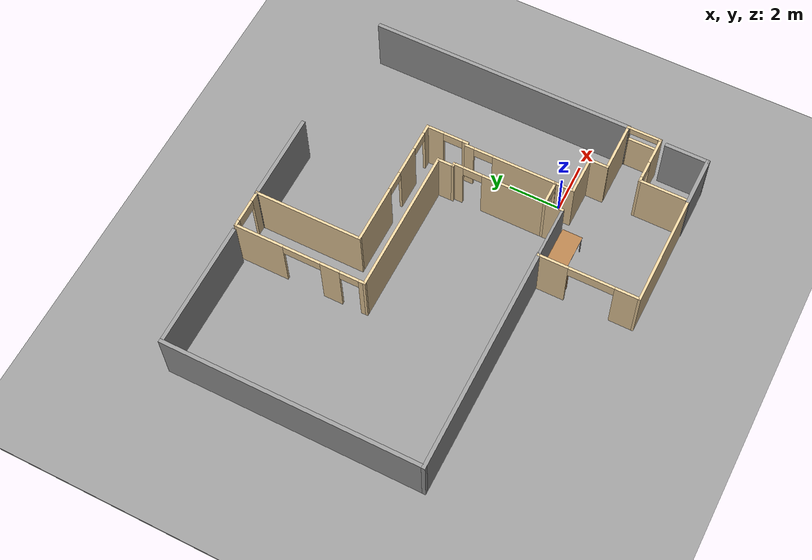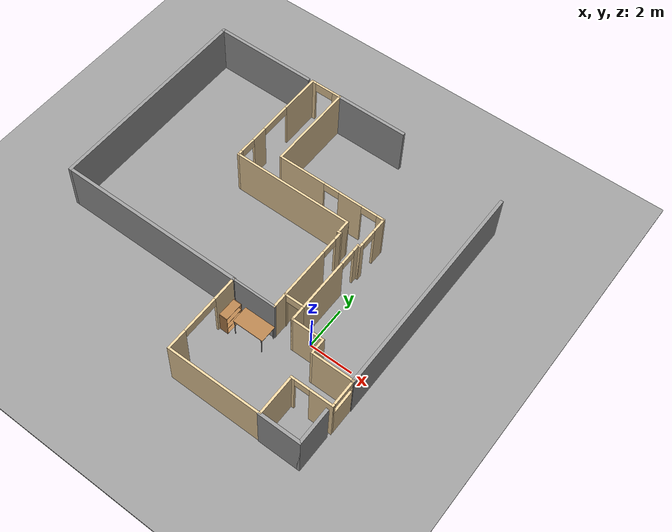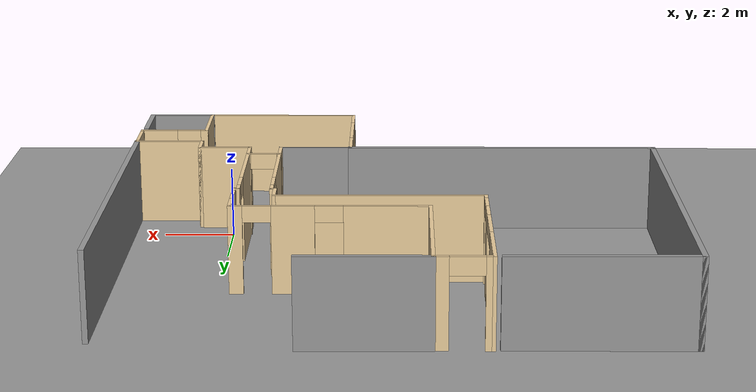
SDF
<sdf version="1.6">
 <world name="default">
  <model name="ground_plane">
   <static>1</static>
   <link name="link">
    <collision name="collision">
     <geometry><plane><normal>0 0 1</normal><size>100 100</size></plane></geometry>
     <surface><friction><ode><mu>100</mu><mu2>50</mu2></ode></friction></surface>
    </collision>
    <visual name="visual">
     <cast_shadows>0</cast_shadows>
     <geometry><plane><normal>0 0 1</normal><size>100 100</size></plane></geometry>
     <material>
      <script><uri>file://media/materials/scripts/gazebo.material</uri><name>Gazebo/Grey</name></script>
     </material>
    </visual>
   </link>
  </model>
  <model name="myroom">
   <pose>-4.68363 2.51363 0 0 -0 0</pose>
   <link name="Wall_19">
    <collision name="Wall_19_Collision">
     <geometry><box><size>0.81 0.1 2.5</size></box></geometry>
     <pose>0 0 1.25 0 -0 0</pose>
    </collision>
    <visual name="Wall_19_Visual">
     <pose>0 0 1.25 0 -0 0</pose>
     <geometry><box><size>0.81 0.1 2.5</size></box></geometry>
     <material>
      <script><uri>file://media/materials/scripts/gazebo.material</uri><name>Gazebo/Grey</name></script>
      <ambient>0.921569 0.807843 0.615686 1</ambient>
     </material>
     <meta><layer>0</layer></meta>
    </visual>
    <pose>4.2 -2.785 0 0 0 -1.5708</pose>
   </link>
   <link name="Wall_22">
    <collision name="Wall_22_Collision">
     <geometry><box><size>1.57 0.1 2.5</size></box></geometry>
     <pose>0 0 1.25 0 -0 0</pose>
    </collision>
    <visual name="Wall_22_Visual">
     <pose>0 0 1.25 0 -0 0</pose>
     <geometry><box><size>1.57 0.1 2.5</size></box></geometry>
     <material>
      <script><uri>file://media/materials/scripts/gazebo.material</uri><name>Gazebo/Grey</name></script>
      <ambient>0.921569 0.807843 0.615686 1</ambient>
     </material>
     <meta><layer>0</layer></meta>
    </visual>
    <pose>4.935 -3.14 0 0 -0 0</pose>
   </link>
   <link name="Wall_24">
    <collision name="Wall_24_Collision">
     <geometry><box><size>0.79 0.1 2.5</size></box></geometry>
     <pose>0 0 1.25 0 -0 0</pose>
    </collision>
    <visual name="Wall_24_Visual">
     <pose>0 0 1.25 0 -0 0</pose>
     <geometry><box><size>0.79 0.1 2.5</size></box></geometry>
     <material>
      <script><uri>file://media/materials/scripts/gazebo.material</uri><name>Gazebo/Grey</name></script>
      <ambient>0.921569 0.807843 0.615686 1</ambient>
     </material>
     <meta><layer>0</layer></meta>
    </visual>
    <pose>5.67 -3.485 0 0 0 -1.5708</pose>
   </link>
   <link name="Wall_26">
    <collision name="Wall_26_Collision">
     <geometry><box><size>2.03 0.1 2.5</size></box></geometry>
     <pose>0 0 1.25 0 -0 0</pose>
    </collision>
    <visual name="Wall_26_Visual">
     <pose>0 0 1.25 0 -0 0</pose>
     <geometry><box><size>2.03 0.1 2.5</size></box></geometry>
     <material>
      <script><uri>file://media/materials/scripts/gazebo.material</uri><name>Gazebo/Grey</name></script>
      <ambient>0.921569 0.807843 0.615686 1</ambient>
     </material>
     <meta><layer>0</layer></meta>
    </visual>
    <pose>6.635 -3.83 0 0 -0 0</pose>
   </link>
   <link name="Wall_28">
    <pose>7.6 -4.475 0 0 0 -1.5708</pose>
    <visual name="Wall_28_Visual_0">
     <pose>-0.621782 0 1.25 0 -0 0</pose>
     <geometry><box><size>0.146436 0.1 2.5</size></box></geometry>
     <material>
      <script><uri>file://media/materials/scripts/gazebo.material</uri><name>Gazebo/Grey</name></script>
      <ambient>0.921569 0.807843 0.615686 1</ambient>
     </material>
     <meta><layer>0</layer></meta>
    </visual>
    <collision name="Wall_28_Collision_0">
     <geometry><box><size>0.146436 0.1 2.5</size></box></geometry>
     <pose>-0.621782 0 1.25 0 -0 0</pose>
    </collision>
    <visual name="Wall_28_Visual_1">
     <pose>0.073218 0 0.9 0 -0 0</pose>
     <geometry><box><size>1.24356 0.1 1.8</size></box></geometry>
     <material>
      <script><uri>file://media/materials/scripts/gazebo.material</uri><name>Gazebo/Grey</name></script>
      <ambient>0.921569 0.807843 0.615686 1</ambient>
     </material>
     <meta><layer>0</layer></meta>
    </visual>
    <collision name="Wall_28_Collision_1">
     <geometry><box><size>1.24356 0.1 1.8</size></box></geometry>
     <pose>0.073218 0 0.9 0 -0 0</pose>
    </collision>
    <visual name="Wall_28_Visual_2">
     <pose>0.623218 0 2.15 0 -0 0</pose>
     <geometry><box><size>0.143564 0.1 0.7</size></box></geometry>
     <material>
      <script><uri>file://media/materials/scripts/gazebo.material</uri><name>Gazebo/Grey</name></script>
      <ambient>0.921569 0.807843 0.615686 1</ambient>
     </material>
     <meta><layer>0</layer></meta>
    </visual>
    <collision name="Wall_28_Collision_2">
     <geometry><box><size>0.143564 0.1 0.7</size></box></geometry>
     <pose>0.623218 0 2.15 0 -0 0</pose>
    </collision>
    <visual name="Wall_28_Visual_3">
     <pose>0.001436 0 2.35 0 -0 0</pose>
     <geometry><box><size>1.1 0.1 0.3</size></box></geometry>
     <material>
      <script><uri>file://media/materials/scripts/gazebo.material</uri><name>Gazebo/Grey</name></script>
      <ambient>0.921569 0.807843 0.615686 1</ambient>
     </material>
     <meta><layer>0</layer></meta>
    </visual>
    <collision name="Wall_28_Collision_3">
     <geometry><box><size>1.1 0.1 0.3</size></box></geometry>
     <pose>0.001436 0 2.35 0 -0 0</pose>
    </collision>
   </link>
   <link name="Wall_30">
    <pose>6.635 -5.12 0 0 -0 3.14159</pose>
    <visual name="Wall_30_Visual_0">
     <pose>-0.459913 0 1.25 0 -0 0</pose>
     <geometry><box><size>1.11017 0.1 2.5</size></box></geometry>
     <material>
      <script><uri>file://media/materials/scripts/gazebo.material</uri><name>Gazebo/Grey</name></script>
      <ambient>0.921569 0.807843 0.615686 1</ambient>
     </material>
     <meta><layer>0</layer></meta>
    </visual>
    <collision name="Wall_30_Collision_0">
     <geometry><box><size>1.11017 0.1 2.5</size></box></geometry>
     <pose>-0.459913 0 1.25 0 -0 0</pose>
    </collision>
    <visual name="Wall_30_Visual_1">
     <pose>0.905087 0 1.25 0 -0 0</pose>
     <geometry><box><size>0.219825 0.1 2.5</size></box></geometry>
     <material>
      <script><uri>file://media/materials/scripts/gazebo.material</uri><name>Gazebo/Grey</name></script>
      <ambient>0.921569 0.807843 0.615686 1</ambient>
     </material>
     <meta><layer>0</layer></meta>
    </visual>
    <collision name="Wall_30_Collision_1">
     <geometry><box><size>0.219825 0.1 2.5</size></box></geometry>
     <pose>0.905087 0 1.25 0 -0 0</pose>
    </collision>
    <visual name="Wall_30_Visual_2">
     <pose>0.445175 0 2.275 0 -0 0</pose>
     <geometry><box><size>0.7 0.1 0.45</size></box></geometry>
     <material>
      <script><uri>file://media/materials/scripts/gazebo.material</uri><name>Gazebo/Grey</name></script>
      <ambient>0.921569 0.807843 0.615686 1</ambient>
     </material>
     <meta><layer>0</layer></meta>
    </visual>
    <collision name="Wall_30_Collision_2">
     <geometry><box><size>0.7 0.1 0.45</size></box></geometry>
     <pose>0.445175 0 2.275 0 -0 0</pose>
    </collision>
   </link>
   <link name="Wall_32">
    <collision name="Wall_32_Collision">
     <geometry><box><size>1.99 0.1 2.5</size></box></geometry>
     <pose>0 0 1.25 0 -0 0</pose>
    </collision>
    <visual name="Wall_32_Visual">
     <pose>0 0 1.25 0 -0 0</pose>
     <geometry><box><size>1.99 0.1 2.5</size></box></geometry>
     <material>
      <script><uri>file://media/materials/scripts/gazebo.material</uri><name>Gazebo/Grey</name></script>
      <ambient>0.921569 0.807843 0.615686 1</ambient>
     </material>
     <meta><layer>0</layer></meta>
    </visual>
    <pose>5.67 -6.065 0 0 0 -1.5708</pose>
   </link>
   <link name="Wall_34">
    <collision name="Wall_34_Collision">
     <geometry><box><size>4.52 0.1 2.5</size></box></geometry>
     <pose>0 0 1.25 0 -0 0</pose>
    </collision>
    <visual name="Wall_34_Visual">
     <pose>0 0 1.25 0 -0 0</pose>
     <geometry><box><size>4.52 0.1 2.5</size></box></geometry>
     <material>
      <script><uri>file://media/materials/scripts/gazebo.material</uri><name>Gazebo/Grey</name></script>
      <ambient>0.921569 0.807843 0.615686 1</ambient>
     </material>
     <meta><layer>0</layer></meta>
    </visual>
    <pose>3.46 -7.01 0 0 -0 3.14159</pose>
   </link>
   <link name="Wall_36">
    <pose>1.25 -5.0735 0 0 -0 1.5708</pose>
    <visual name="Wall_36_Visual_0">
     <pose>-1.4907 0 1.25 0 -0 0</pose>
     <geometry><box><size>0.991176 0.1 2.5</size></box></geometry>
     <material>
      <script><uri>file://media/materials/scripts/gazebo.material</uri><name>Gazebo/Grey</name></script>
      <ambient>0.921569 0.807843 0.615686 1</ambient>
     </material>
     <meta><layer>0</layer></meta>
    </visual>
    <collision name="Wall_36_Collision_0">
     <geometry><box><size>0.991176 0.1 2.5</size></box></geometry>
     <pose>-1.4907 0 1.25 0 -0 0</pose>
    </collision>
    <visual name="Wall_36_Visual_1">
     <pose>0.495588 0 0.005 0 -0 0</pose>
     <geometry><box><size>2.9814 0.1 0.01</size></box></geometry>
     <material>
      <script><uri>file://media/materials/scripts/gazebo.material</uri><name>Gazebo/Grey</name></script>
      <ambient>0.921569 0.807843 0.615686 1</ambient>
     </material>
     <meta><layer>0</layer></meta>
    </visual>
    <collision name="Wall_36_Collision_1">
     <geometry><box><size>2.9814 0.1 0.01</size></box></geometry>
     <pose>0.495588 0 0.005 0 -0 0</pose>
    </collision>
    <visual name="Wall_36_Visual_2">
     <pose>1.38559 0 1.255 0 -0 0</pose>
     <geometry><box><size>1.2014 0.1 2.49</size></box></geometry>
     <material>
      <script><uri>file://media/materials/scripts/gazebo.material</uri><name>Gazebo/Grey</name></script>
      <ambient>0.921569 0.807843 0.615686 1</ambient>
     </material>
     <meta><layer>0</layer></meta>
    </visual>
    <collision name="Wall_36_Collision_2">
     <geometry><box><size>1.2014 0.1 2.49</size></box></geometry>
     <pose>1.38559 0 1.255 0 -0 0</pose>
    </collision>
    <visual name="Wall_36_Visual_3">
     <pose>-0.105111 0 2.255 0 -0 0</pose>
     <geometry><box><size>1.78 0.1 0.49</size></box></geometry>
     <material>
      <script><uri>file://media/materials/scripts/gazebo.material</uri><name>Gazebo/Grey</name></script>
      <ambient>0.921569 0.807843 0.615686 1</ambient>
     </material>
     <meta><layer>0</layer></meta>
    </visual>
    <collision name="Wall_36_Collision_3">
     <geometry><box><size>1.78 0.1 0.49</size></box></geometry>
     <pose>-0.105111 0 2.255 0 -0 0</pose>
    </collision>
   </link>
   <link name="Wall_38">
    <pose>3.745 -2.43 0 0 -0 3.14159</pose>
    <visual name="Wall_38_Visual_0">
     <pose>-0.442506 0 1.25 0 -0 0</pose>
     <geometry><box><size>0.124989 0.1 2.5</size></box></geometry>
     <material>
      <script><uri>file://media/materials/scripts/gazebo.material</uri><name>Gazebo/Grey</name></script>
      <ambient>0.921569 0.807843 0.615686 1</ambient>
     </material>
     <meta><layer>0</layer></meta>
    </visual>
    <collision name="Wall_38_Collision_0">
     <geometry><box><size>0.124989 0.1 2.5</size></box></geometry>
     <pose>-0.442506 0 1.25 0 -0 0</pose>
    </collision>
    <visual name="Wall_38_Visual_1">
     <pose>0.442494 0 1.25 0 -0 0</pose>
     <geometry><box><size>0.125011 0.1 2.5</size></box></geometry>
     <material>
      <script><uri>file://media/materials/scripts/gazebo.material</uri><name>Gazebo/Grey</name></script>
      <ambient>0.921569 0.807843 0.615686 1</ambient>
     </material>
     <meta><layer>0</layer></meta>
    </visual>
    <collision name="Wall_38_Collision_1">
     <geometry><box><size>0.125011 0.1 2.5</size></box></geometry>
     <pose>0.442494 0 1.25 0 -0 0</pose>
    </collision>
    <visual name="Wall_38_Visual_2">
     <pose>-1.1e-05 0 2.275 0 -0 0</pose>
     <geometry><box><size>0.76 0.1 0.45</size></box></geometry>
     <material>
      <script><uri>file://media/materials/scripts/gazebo.material</uri><name>Gazebo/Grey</name></script>
      <ambient>0.921569 0.807843 0.615686 1</ambient>
     </material>
     <meta><layer>0</layer></meta>
    </visual>
    <collision name="Wall_38_Collision_2">
     <geometry><box><size>0.76 0.1 0.45</size></box></geometry>
     <pose>-1.1e-05 0 2.275 0 -0 0</pose>
    </collision>
   </link>
   <link name="Wall_43">
    <collision name="Wall_43_Collision">
     <geometry><box><size>0.8 0.1 2.5</size></box></geometry>
     <pose>0 0 1.25 0 -0 0</pose>
    </collision>
    <visual name="Wall_43_Visual">
     <pose>0 0 1.25 0 -0 0</pose>
     <geometry><box><size>0.8 0.1 2.5</size></box></geometry>
     <material>
      <script><uri>file://media/materials/scripts/gazebo.material</uri><name>Gazebo/Grey</name></script>
      <ambient>0.921569 0.807843 0.615686 1</ambient>
     </material>
     <meta><layer>0</layer></meta>
    </visual>
    <pose>3.29 -2.78 0 0 0 -1.5708</pose>
   </link>
   <link name="Wall_48">
    <collision name="Wall_48_Collision">
     <geometry><box><size>2.14 0.1 2.5</size></box></geometry>
     <pose>0 0 1.25 0 -0 0</pose>
    </collision>
    <visual name="Wall_48_Visual">
     <pose>0 0 1.25 0 -0 0</pose>
     <geometry><box><size>2.14 0.1 2.5</size></box></geometry>
     <material>
      <script><uri>file://media/materials/scripts/gazebo.material</uri><name>Gazebo/Grey</name></script>
      <ambient>1 1 1 1</ambient>
     </material>
     <meta><layer>0</layer></meta>
    </visual>
    <pose>2.27 -3.13 0 0 -0 3.14159</pose>
   </link>
   <link name="Wall_50">
    <pose>3.29 -0.61 0 0 -0 1.5708</pose>
    <visual name="Wall_50_Visual_0">
     <pose>-0.593478 0 1.25 0 -0 0</pose>
     <geometry><box><size>2.55304 0.1 2.5</size></box></geometry>
     <material>
      <script><uri>file://media/materials/scripts/gazebo.material</uri><name>Gazebo/Grey</name></script>
      <ambient>0.921569 0.807843 0.615686 1</ambient>
     </material>
     <meta><layer>0</layer></meta>
    </visual>
    <collision name="Wall_50_Collision_0">
     <geometry><box><size>2.55304 0.1 2.5</size></box></geometry>
     <pose>-0.593478 0 1.25 0 -0 0</pose>
    </collision>
    <visual name="Wall_50_Visual_1">
     <pose>1.65652 0 1.25 0 -0 0</pose>
     <geometry><box><size>0.426956 0.1 2.5</size></box></geometry>
     <material>
      <script><uri>file://media/materials/scripts/gazebo.material</uri><name>Gazebo/Grey</name></script>
      <ambient>0.921569 0.807843 0.615686 1</ambient>
     </material>
     <meta><layer>0</layer></meta>
    </visual>
    <collision name="Wall_50_Collision_1">
     <geometry><box><size>0.426956 0.1 2.5</size></box></geometry>
     <pose>1.65652 0 1.25 0 -0 0</pose>
    </collision>
    <visual name="Wall_50_Visual_2">
     <pose>1.06304 0 2.275 0 -0 0</pose>
     <geometry><box><size>0.76 0.1 0.45</size></box></geometry>
     <material>
      <script><uri>file://media/materials/scripts/gazebo.material</uri><name>Gazebo/Grey</name></script>
      <ambient>0.921569 0.807843 0.615686 1</ambient>
     </material>
     <meta><layer>0</layer></meta>
    </visual>
    <collision name="Wall_50_Collision_2">
     <geometry><box><size>0.76 0.1 0.45</size></box></geometry>
     <pose>1.06304 0 2.275 0 -0 0</pose>
    </collision>
   </link>
   <link name="Wall_52">
    <collision name="Wall_52_Collision">
     <geometry><box><size>0.2 0.1 2.5</size></box></geometry>
     <pose>0 0 1.25 0 -0 0</pose>
    </collision>
    <visual name="Wall_52_Visual">
     <pose>0 0 1.25 0 -0 0</pose>
     <geometry><box><size>0.2 0.1 2.5</size></box></geometry>
     <material>
      <script><uri>file://media/materials/scripts/gazebo.material</uri><name>Gazebo/Grey</name></script>
      <ambient>0.921569 0.807843 0.615686 1</ambient>
     </material>
     <meta><layer>0</layer></meta>
    </visual>
    <pose>3.24 1.21 0 0 -0 3.14159</pose>
   </link>
   <link name="Wall_53">
    <collision name="Wall_53_Collision">
     <geometry><box><size>0.7 0.1 2.5</size></box></geometry>
     <pose>0 0 1.25 0 -0 0</pose>
    </collision>
    <visual name="Wall_53_Visual">
     <pose>0 0 1.25 0 -0 0</pose>
     <geometry><box><size>0.7 0.1 2.5</size></box></geometry>
     <material>
      <script><uri>file://media/materials/scripts/gazebo.material</uri><name>Gazebo/Grey</name></script>
      <ambient>0.921569 0.807843 0.615686 1</ambient>
     </material>
     <meta><layer>0</layer></meta>
    </visual>
    <pose>3.19 1.51 0 0 -0 1.5708</pose>
   </link>
   <link name="Wall_54">
    <collision name="Wall_54_Collision">
     <geometry><box><size>5.8 0.1 2.5</size></box></geometry>
     <pose>0 0 1.25 0 -0 0</pose>
    </collision>
    <visual name="Wall_54_Visual">
     <pose>0 0 1.25 0 -0 0</pose>
     <geometry><box><size>5.8 0.1 2.5</size></box></geometry>
     <material>
      <script><uri>file://media/materials/scripts/gazebo.material</uri><name>Gazebo/Grey</name></script>
      <ambient>0.921569 0.807843 0.615686 1</ambient>
     </material>
     <meta><layer>0</layer></meta>
    </visual>
    <pose>0.34 1.81 0 0 -0 3.14159</pose>
   </link>
   <link name="Wall_56">
    <pose>4.2 -0.63 0 0 -0 1.5708</pose>
    <visual name="Wall_56_Visual_0">
     <pose>-0.569733 0 1.25 0 -0 0</pose>
     <geometry><box><size>2.56053 0.1 2.5</size></box></geometry>
     <material>
      <script><uri>file://media/materials/scripts/gazebo.material</uri><name>Gazebo/Grey</name></script>
      <ambient>0.921569 0.807843 0.615686 1</ambient>
     </material>
     <meta><layer>0</layer></meta>
    </visual>
    <collision name="Wall_56_Collision_0">
     <geometry><box><size>2.56053 0.1 2.5</size></box></geometry>
     <pose>-0.569733 0 1.25 0 -0 0</pose>
    </collision>
    <visual name="Wall_56_Visual_1">
     <pose>1.66027 0 1.25 0 -0 0</pose>
     <geometry><box><size>0.379466 0.1 2.5</size></box></geometry>
     <material>
      <script><uri>file://media/materials/scripts/gazebo.material</uri><name>Gazebo/Grey</name></script>
      <ambient>0.921569 0.807843 0.615686 1</ambient>
     </material>
     <meta><layer>0</layer></meta>
    </visual>
    <collision name="Wall_56_Collision_1">
     <geometry><box><size>0.379466 0.1 2.5</size></box></geometry>
     <pose>1.66027 0 1.25 0 -0 0</pose>
    </collision>
    <visual name="Wall_56_Visual_2">
     <pose>1.09053 0 2.275 0 -0 0</pose>
     <geometry><box><size>0.76 0.1 0.45</size></box></geometry>
     <material>
      <script><uri>file://media/materials/scripts/gazebo.material</uri><name>Gazebo/Grey</name></script>
      <ambient>0.921569 0.807843 0.615686 1</ambient>
     </material>
     <meta><layer>0</layer></meta>
    </visual>
    <collision name="Wall_56_Collision_2">
     <geometry><box><size>0.76 0.1 0.45</size></box></geometry>
     <pose>1.09053 0 2.275 0 -0 0</pose>
    </collision>
   </link>
   <link name="Wall_57">
    <collision name="Wall_57_Collision">
     <geometry><box><size>0.2 0.1 2.5</size></box></geometry>
     <pose>0 0 1.25 0 -0 0</pose>
    </collision>
    <visual name="Wall_57_Visual">
     <pose>0 0 1.25 0 -0 0</pose>
     <geometry><box><size>0.2 0.1 2.5</size></box></geometry>
     <material>
      <script><uri>file://media/materials/scripts/gazebo.material</uri><name>Gazebo/Grey</name></script>
      <ambient>0.921569 0.807843 0.615686 1</ambient>
     </material>
     <meta><layer>0</layer></meta>
    </visual>
    <pose>4.25 1.17 0 0 -0 0</pose>
   </link>
   <link name="Wall_58">
    <pose>4.3 1.97 0 0 -0 1.5708</pose>
    <visual name="Wall_58_Visual_0">
     <pose>-0.725824 0 1.25 0 -0 0</pose>
     <geometry><box><size>0.248351 0.1 2.5</size></box></geometry>
     <material>
      <script><uri>file://media/materials/scripts/gazebo.material</uri><name>Gazebo/Grey</name></script>
      <ambient>0.921569 0.807843 0.615686 1</ambient>
     </material>
     <meta><layer>0</layer></meta>
    </visual>
    <collision name="Wall_58_Collision_0">
     <geometry><box><size>0.248351 0.1 2.5</size></box></geometry>
     <pose>-0.725824 0 1.25 0 -0 0</pose>
    </collision>
    <visual name="Wall_58_Visual_1">
     <pose>0.504176 0 1.25 0 -0 0</pose>
     <geometry><box><size>0.691649 0.1 2.5</size></box></geometry>
     <material>
      <script><uri>file://media/materials/scripts/gazebo.material</uri><name>Gazebo/Grey</name></script>
      <ambient>0.921569 0.807843 0.615686 1</ambient>
     </material>
     <meta><layer>0</layer></meta>
    </visual>
    <collision name="Wall_58_Collision_1">
     <geometry><box><size>0.691649 0.1 2.5</size></box></geometry>
     <pose>0.504176 0 1.25 0 -0 0</pose>
    </collision>
    <visual name="Wall_58_Visual_2">
     <pose>-0.221649 0 2.275 0 -0 0</pose>
     <geometry><box><size>0.76 0.1 0.45</size></box></geometry>
     <material>
      <script><uri>file://media/materials/scripts/gazebo.material</uri><name>Gazebo/Grey</name></script>
      <ambient>0.921569 0.807843 0.615686 1</ambient>
     </material>
     <meta><layer>0</layer></meta>
    </visual>
    <collision name="Wall_58_Collision_2">
     <geometry><box><size>0.76 0.1 0.45</size></box></geometry>
     <pose>-0.221649 0 2.275 0 -0 0</pose>
    </collision>
   </link>
   <link name="Wall_62">
    <pose>-2.51 4.41 0 0 -0 1.5708</pose>
    <visual name="Wall_62_Visual_0">
     <pose>-2.51076 0 1.25 0 -0 0</pose>
     <geometry><box><size>0.278473 0.1 2.5</size></box></geometry>
     <material>
      <script><uri>file://media/materials/scripts/gazebo.material</uri><name>Gazebo/Grey</name></script>
      <ambient>0.921569 0.807843 0.615686 1</ambient>
     </material>
     <meta><layer>0</layer></meta>
    </visual>
    <collision name="Wall_62_Collision_0">
     <geometry><box><size>0.278473 0.1 2.5</size></box></geometry>
     <pose>-2.51076 0 1.25 0 -0 0</pose>
    </collision>
    <visual name="Wall_62_Visual_1">
     <pose>-1.2242 0 1.25 0 -0 0</pose>
     <geometry><box><size>0.774661 0.1 2.5</size></box></geometry>
     <material>
      <script><uri>file://media/materials/scripts/gazebo.material</uri><name>Gazebo/Grey</name></script>
      <ambient>0.921569 0.807843 0.615686 1</ambient>
     </material>
     <meta><layer>0</layer></meta>
    </visual>
    <collision name="Wall_62_Collision_1">
     <geometry><box><size>0.774661 0.1 2.5</size></box></geometry>
     <pose>-1.2242 0 1.25 0 -0 0</pose>
    </collision>
    <visual name="Wall_62_Visual_2">
     <pose>1.65657 0 1.25 0 -0 0</pose>
     <geometry><box><size>1.98687 0.1 2.5</size></box></geometry>
     <material>
      <script><uri>file://media/materials/scripts/gazebo.material</uri><name>Gazebo/Grey</name></script>
      <ambient>0.921569 0.807843 0.615686 1</ambient>
     </material>
     <meta><layer>0</layer></meta>
    </visual>
    <collision name="Wall_62_Collision_2">
     <geometry><box><size>1.98687 0.1 2.5</size></box></geometry>
     <pose>1.65657 0 1.25 0 -0 0</pose>
    </collision>
    <visual name="Wall_62_Visual_3">
     <pose>-1.99153 0 2.275 0 -0 0</pose>
     <geometry><box><size>0.76 0.1 0.45</size></box></geometry>
     <material>
      <script><uri>file://media/materials/scripts/gazebo.material</uri><name>Gazebo/Grey</name></script>
      <ambient>0.921569 0.807843 0.615686 1</ambient>
     </material>
     <meta><layer>0</layer></meta>
    </visual>
    <collision name="Wall_62_Collision_3">
     <geometry><box><size>0.76 0.1 0.45</size></box></geometry>
     <pose>-1.99153 0 2.275 0 -0 0</pose>
    </collision>
    <visual name="Wall_62_Visual_4">
     <pose>-0.086866 0 2.275 0 -0 0</pose>
     <geometry><box><size>1.5 0.1 0.45</size></box></geometry>
     <material>
      <script><uri>file://media/materials/scripts/gazebo.material</uri><name>Gazebo/Grey</name></script>
      <ambient>0.921569 0.807843 0.615686 1</ambient>
     </material>
     <meta><layer>0</layer></meta>
    </visual>
    <collision name="Wall_62_Collision_4">
     <geometry><box><size>1.5 0.1 0.45</size></box></geometry>
     <pose>-0.086866 0 2.275 0 -0 0</pose>
    </collision>
   </link>
   <link name="Wall_64">
    <pose>-1.76 7.01 0 0 -0 0</pose>
    <visual name="Wall_64_Visual_0">
     <pose>-0.668872 0 1.25 0 -0 0</pose>
     <geometry><box><size>0.262256 0.1 2.5</size></box></geometry>
     <material>
      <script><uri>file://media/materials/scripts/gazebo.material</uri><name>Gazebo/Grey</name></script>
      <ambient>0.921569 0.807843 0.615686 1</ambient>
     </material>
     <meta><layer>0</layer></meta>
    </visual>
    <collision name="Wall_64_Collision_0">
     <geometry><box><size>0.262256 0.1 2.5</size></box></geometry>
     <pose>-0.668872 0 1.25 0 -0 0</pose>
    </collision>
    <visual name="Wall_64_Visual_1">
     <pose>0.581128 0 1.25 0 -0 0</pose>
     <geometry><box><size>0.437744 0.1 2.5</size></box></geometry>
     <material>
      <script><uri>file://media/materials/scripts/gazebo.material</uri><name>Gazebo/Grey</name></script>
      <ambient>0.921569 0.807843 0.615686 1</ambient>
     </material>
     <meta><layer>0</layer></meta>
    </visual>
    <collision name="Wall_64_Collision_1">
     <geometry><box><size>0.437744 0.1 2.5</size></box></geometry>
     <pose>0.581128 0 1.25 0 -0 0</pose>
    </collision>
    <visual name="Wall_64_Visual_2">
     <pose>-0.087744 0 2.25 0 -0 0</pose>
     <geometry><box><size>0.9 0.1 0.5</size></box></geometry>
     <material>
      <script><uri>file://media/materials/scripts/gazebo.material</uri><name>Gazebo/Grey</name></script>
      <ambient>0.921569 0.807843 0.615686 1</ambient>
     </material>
     <meta><layer>0</layer></meta>
    </visual>
    <collision name="Wall_64_Collision_2">
     <geometry><box><size>0.9 0.1 0.5</size></box></geometry>
     <pose>-0.087744 0 2.25 0 -0 0</pose>
    </collision>
   </link>
   <link name="Wall_66">
    <collision name="Wall_66_Collision">
     <geometry><box><size>4.30002 0.1 2.5</size></box></geometry>
     <pose>0 0 1.25 0 -0 0</pose>
    </collision>
    <visual name="Wall_66_Visual">
     <pose>0 0 1.25 0 -0 0</pose>
     <geometry><box><size>4.30002 0.1 2.5</size></box></geometry>
     <material>
      <script><uri>file://media/materials/scripts/gazebo.material</uri><name>Gazebo/Grey</name></script>
      <ambient>0.921569 0.807843 0.615686 1</ambient>
     </material>
     <meta><layer>0</layer></meta>
    </visual>
    <pose>-1.01 4.91 0 0 0 -1.5708</pose>
   </link>
   <link name="Wall_68">
    <pose>1.645 2.81 0 0 -0 0</pose>
    <visual name="Wall_68_Visual_0">
     <pose>-1.53066 0 1.25 0 -0 0</pose>
     <geometry><box><size>2.34868 0.1 2.5</size></box></geometry>
     <material>
      <script><uri>file://media/materials/scripts/gazebo.material</uri><name>Gazebo/Grey</name></script>
      <ambient>0.921569 0.807843 0.615686 1</ambient>
     </material>
     <meta><layer>0</layer></meta>
    </visual>
    <collision name="Wall_68_Collision_0">
     <geometry><box><size>2.34868 0.1 2.5</size></box></geometry>
     <pose>-1.53066 0 1.25 0 -0 0</pose>
    </collision>
    <visual name="Wall_68_Visual_1">
     <pose>0.980366 0 1.25 0 -0 0</pose>
     <geometry><box><size>1.15337 0.1 2.5</size></box></geometry>
     <material>
      <script><uri>file://media/materials/scripts/gazebo.material</uri><name>Gazebo/Grey</name></script>
      <ambient>0.921569 0.807843 0.615686 1</ambient>
     </material>
     <meta><layer>0</layer></meta>
    </visual>
    <collision name="Wall_68_Collision_1">
     <geometry><box><size>1.15337 0.1 2.5</size></box></geometry>
     <pose>0.980366 0 1.25 0 -0 0</pose>
    </collision>
    <visual name="Wall_68_Visual_2">
     <pose>2.51103 0 1.25 0 -0 0</pose>
     <geometry><box><size>0.387948 0.1 2.5</size></box></geometry>
     <material>
      <script><uri>file://media/materials/scripts/gazebo.material</uri><name>Gazebo/Grey</name></script>
      <ambient>0.921569 0.807843 0.615686 1</ambient>
     </material>
     <meta><layer>0</layer></meta>
    </visual>
    <collision name="Wall_68_Collision_2">
     <geometry><box><size>0.387948 0.1 2.5</size></box></geometry>
     <pose>2.51103 0 1.25 0 -0 0</pose>
    </collision>
    <visual name="Wall_68_Visual_3">
     <pose>0.02368 0 2.275 0 -0 0</pose>
     <geometry><box><size>0.76 0.1 0.45</size></box></geometry>
     <material>
      <script><uri>file://media/materials/scripts/gazebo.material</uri><name>Gazebo/Grey</name></script>
      <ambient>0.921569 0.807843 0.615686 1</ambient>
     </material>
     <meta><layer>0</layer></meta>
    </visual>
    <collision name="Wall_68_Collision_3">
     <geometry><box><size>0.76 0.1 0.45</size></box></geometry>
     <pose>0.02368 0 2.275 0 -0 0</pose>
    </collision>
    <visual name="Wall_68_Visual_4">
     <pose>1.93705 0 2.275 0 -0 0</pose>
     <geometry><box><size>0.76 0.1 0.45</size></box></geometry>
     <material>
      <script><uri>file://media/materials/scripts/gazebo.material</uri><name>Gazebo/Grey</name></script>
      <ambient>0.921569 0.807843 0.615686 1</ambient>
     </material>
     <meta><layer>0</layer></meta>
    </visual>
    <collision name="Wall_68_Collision_4">
     <geometry><box><size>0.76 0.1 0.45</size></box></geometry>
     <pose>1.93705 0 2.275 0 -0 0</pose>
    </collision>
   </link>
   <link name="Wall_70">
    <collision name="Wall_70_Collision">
     <geometry><box><size>9 0.15 2.5</size></box></geometry>
     <pose>0 0 1.25 0 -0 0</pose>
    </collision>
    <visual name="Wall_70_Visual">
     <pose>0 0 1.25 0 -0 0</pose>
     <geometry><box><size>9 0.15 2.5</size></box></geometry>
     <material>
      <script><uri>file://media/materials/scripts/gazebo.material</uri><name>Gazebo/Grey</name></script>
      <ambient>1 1 1 1</ambient>
     </material>
     <meta><layer>0</layer></meta>
    </visual>
    <pose>-3.175 -3.13 0 0 -0 3.14159</pose>
   </link>
   <link name="Wall_71">
    <collision name="Wall_71_Collision">
     <geometry><box><size>10.25 0.15 2.5</size></box></geometry>
     <pose>0 0 1.25 0 -0 0</pose>
    </collision>
    <visual name="Wall_71_Visual">
     <pose>0 0 1.25 0 -0 0</pose>
     <geometry><box><size>10.25 0.15 2.5</size></box></geometry>
     <material>
      <script><uri>file://media/materials/scripts/gazebo.material</uri><name>Gazebo/Grey</name></script>
      <ambient>1 1 1 1</ambient>
     </material>
     <meta><layer>0</layer></meta>
    </visual>
    <pose>-7.6 1.92 0 0 -0 1.5708</pose>
   </link>
   <link name="Wall_72">
    <collision name="Wall_72_Collision">
     <geometry><box><size>5 0.15 2.5</size></box></geometry>
     <pose>0 0 1.25 0 -0 0</pose>
    </collision>
    <visual name="Wall_72_Visual">
     <pose>0 0 1.25 0 -0 0</pose>
     <geometry><box><size>5 0.15 2.5</size></box></geometry>
     <material>
      <script><uri>file://media/materials/scripts/gazebo.material</uri><name>Gazebo/Grey</name></script>
      <ambient>1 1 1 1</ambient>
     </material>
     <meta><layer>0</layer></meta>
    </visual>
    <pose>-5.175 6.97 0 0 -0 0</pose>
   </link>
   <link name="Wall_78">
    <collision name="Wall_78_Collision">
     <geometry><box><size>2 0.15 2.5</size></box></geometry>
     <pose>0 0 1.25 0 -0 0</pose>
    </collision>
    <visual name="Wall_78_Visual">
     <pose>0 0 1.25 0 -0 0</pose>
     <geometry><box><size>2 0.15 2.5</size></box></geometry>
     <material>
      <script><uri>file://media/materials/scripts/gazebo.material</uri><name>Gazebo/Grey</name></script>
      <ambient>1 1 1 1</ambient>
     </material>
     <meta><layer>0</layer></meta>
    </visual>
    <pose>6.595 -7.01 0 0 -0 0</pose>
   </link>
   <link name="Wall_79">
    <collision name="Wall_79_Collision">
     <geometry><box><size>1.75 0.15 2.5</size></box></geometry>
     <pose>0 0 1.25 0 -0 0</pose>
    </collision>
    <visual name="Wall_79_Visual">
     <pose>0 0 1.25 0 -0 0</pose>
     <geometry><box><size>1.75 0.15 2.5</size></box></geometry>
     <material>
      <script><uri>file://media/materials/scripts/gazebo.material</uri><name>Gazebo/Grey</name></script>
      <ambient>1 1 1 1</ambient>
     </material>
     <meta><layer>0</layer></meta>
    </visual>
    <pose>7.52 -6.21 0 0 -0 1.5708</pose>
   </link>
   <link name="Wall_81">
    <collision name="Wall_81_Collision">
     <geometry><box><size>10.5 0.15 2.5</size></box></geometry>
     <pose>0 0 1.25 0 -0 0</pose>
    </collision>
    <visual name="Wall_81_Visual">
     <pose>0 0 1.25 0 -0 0</pose>
     <geometry><box><size>10.5 0.15 2.5</size></box></geometry>
     <material>
      <script><uri>file://media/materials/scripts/gazebo.material</uri><name>Gazebo/Grey</name></script>
      <ambient>1 1 1 1</ambient>
     </material>
     <meta><layer>0</layer></meta>
    </visual>
    <pose>7.6 1.345 0 0 -0 1.5708</pose>
   </link>
   <link name="Wall_83">
    <collision name="Wall_83_Collision">
     <geometry><box><size>3.5 0.15 2.5</size></box></geometry>
     <pose>0 0 1.25 0 -0 0</pose>
    </collision>
    <visual name="Wall_83_Visual">
     <pose>0 0 1.25 0 -0 0</pose>
     <geometry><box><size>3.5 0.15 2.5</size></box></geometry>
     <material>
      <script><uri>file://media/materials/scripts/gazebo.material</uri><name>Gazebo/Grey</name></script>
      <ambient>1 1 1 1</ambient>
     </material>
     <meta><layer>0</layer></meta>
    </visual>
    <pose>0.6765 7.01 0 0 -0 0</pose>
   </link>
   <static>1</static>
  </model>
  <model name="table">
   <static>1</static>
   <link name="link">
    <collision name="surface">
     <pose>0 0 1 0 -0 0</pose>
     <geometry><box><size>1.5 0.8 0.03</size></box></geometry>
     <surface><friction><ode><mu>0.6</mu><mu2>0.6</mu2></ode></friction></surface>
    </collision>
    <visual name="visual1">
     <pose>0 0 1 0 -0 0</pose>
     <geometry><box><size>1.5 0.8 0.03</size></box></geometry>
     <material>
      <script><uri>file://media/materials/scripts/gazebo.material</uri><name>Gazebo/Wood</name></script>
     </material>
    </visual>
    <collision name="front_left_leg">
     <pose>0.68 0.38 0.5 0 -0 0</pose>
     <geometry><cylinder><radius>0.02</radius><length>1</length></cylinder></geometry>
    </collision>
    <visual name="front_left_leg">
     <pose>0.68 0.38 0.5 0 -0 0</pose>
     <geometry><cylinder><radius>0.02</radius><length>1</length></cylinder></geometry>
     <material>
      <script><uri>file://media/materials/scripts/gazebo.material</uri><name>Gazebo/Grey</name></script>
     </material>
    </visual>
    <collision name="front_right_leg">
     <pose>0.68 -0.38 0.5 0 -0 0</pose>
     <geometry><cylinder><radius>0.02</radius><length>1</length></cylinder></geometry>
    </collision>
    <visual name="front_right_leg">
     <pose>0.68 -0.38 0.5 0 -0 0</pose>
     <geometry><cylinder><radius>0.02</radius><length>1</length></cylinder></geometry>
     <material>
      <script><uri>file://media/materials/scripts/gazebo.material</uri><name>Gazebo/Grey</name></script>
     </material>
    </visual>
    <collision name="back_right_leg">
     <pose>-0.68 -0.38 0.5 0 -0 0</pose>
     <geometry><cylinder><radius>0.02</radius><length>1</length></cylinder></geometry>
    </collision>
    <visual name="back_right_leg">
     <pose>-0.68 -0.38 0.5 0 -0 0</pose>
     <geometry><cylinder><radius>0.02</radius><length>1</length></cylinder></geometry>
     <material>
      <script><uri>file://media/materials/scripts/gazebo.material</uri><name>Gazebo/Grey</name></script>
     </material>
    </visual>
    <collision name="back_left_leg">
     <pose>-0.68 0.38 0.5 0 -0 0</pose>
     <geometry><cylinder><radius>0.02</radius><length>1</length></cylinder></geometry>
    </collision>
    <visual name="back_left_leg">
     <pose>-0.68 0.38 0.5 0 -0 0</pose>
     <geometry><cylinder><radius>0.02</radius><length>1</length></cylinder></geometry>
     <material>
      <script><uri>file://media/materials/scripts/gazebo.material</uri><name>Gazebo/Grey</name></script>
     </material>
    </visual>
   </link>
   <pose>-2.06098 -1.09205 0 0 -0 0</pose>
  </model>
  <model name="bookshelf">
   <static>1</static>
   <link name="link">
    <inertial><mass>1</mass></inertial>
    <collision name="back">
     <pose>0 0.005 0.6 0 -0 0</pose>
     <geometry><box><size>0.9 0.01 1.2</size></box></geometry>
    </collision>
    <visual name="visual1">
     <pose>0 0.005 0.6 0 -0 0</pose>
     <geometry><box><size>0.9 0.01 1.2</size></box></geometry>
     <material>
      <script><uri>file://media/materials/scripts/gazebo.material</uri><name>Gazebo/Wood</name></script>
     </material>
    </visual>
    <collision name="left_side">
     <pose>0.45 -0.195 0.6 0 -0 0</pose>
     <geometry><box><size>0.02 0.4 1.2</size></box></geometry>
    </collision>
    <visual name="visual2">
     <pose>0.45 -0.195 0.6 0 -0 0</pose>
     <geometry><box><size>0.02 0.4 1.2</size></box></geometry>
     <material>
      <script><uri>file://media/materials/scripts/gazebo.material</uri><name>Gazebo/Wood</name></script>
     </material>
    </visual>
    <collision name="right_side">
     <pose>-0.45 -0.195 0.6 0 -0 0</pose>
     <geometry><box><size>0.02 0.4 1.2</size></box></geometry>
    </collision>
    <visual name="visual3">
     <pose>-0.45 -0.195 0.6 0 -0 0</pose>
     <geometry><box><size>0.02 0.4 1.2</size></box></geometry>
     <material>
      <script><uri>file://media/materials/scripts/gazebo.material</uri><name>Gazebo/Wood</name></script>
     </material>
    </visual>
    <collision name="bottom">
     <pose>0 -0.195 0.03 0 -0 0</pose>
     <geometry><box><size>0.88 0.4 0.06</size></box></geometry>
    </collision>
    <visual name="visual4">
     <pose>0 -0.195 0.03 0 -0 0</pose>
     <geometry><box><size>0.88 0.4 0.06</size></box></geometry>
     <material>
      <script><uri>file://media/materials/scripts/gazebo.material</uri><name>Gazebo/Wood</name></script>
     </material>
    </visual>
    <collision name="top">
     <pose>0 -0.195 1.19 0 -0 0</pose>
     <geometry><box><size>0.88 0.4 0.02</size></box></geometry>
    </collision>
    <visual name="visual5">
     <pose>0 -0.195 1.19 0 -0 0</pose>
     <geometry><box><size>0.88 0.4 0.02</size></box></geometry>
     <material>
      <script><uri>file://media/materials/scripts/gazebo.material</uri><name>Gazebo/Wood</name></script>
     </material>
    </visual>
    <collision name="low_shelf">
     <pose>0 -0.195 0.43 0 -0 0</pose>
     <geometry><box><size>0.88 0.4 0.02</size></box></geometry>
    </collision>
    <visual name="visual6">
     <pose>0 -0.195 0.43 0 -0 0</pose>
     <geometry><box><size>0.88 0.4 0.02</size></box></geometry>
     <material>
      <script><uri>file://media/materials/scripts/gazebo.material</uri><name>Gazebo/Wood</name></script>
     </material>
    </visual>
    <collision name="high_shelf">
     <pose>0 -0.195 0.8 0 -0 0</pose>
     <geometry><box><size>0.88 0.4 0.02</size></box></geometry>
    </collision>
    <visual name="visual7">
     <pose>0 -0.195 0.8 0 -0 0</pose>
     <geometry><box><size>0.88 0.4 0.02</size></box></geometry>
     <material>
      <script><uri>file://media/materials/scripts/gazebo.material</uri><name>Gazebo/Wood</name></script>
     </material>
    </visual>
   </link>
   <pose>-3.35633 -1.21986 0 0 -0 1.56092</pose>
  </model>
  <model name="ground_plane_0">
   <static>1</static>
   <link name="link">
    <collision name="collision">
     <geometry><plane><normal>0 0 1</normal><size>100 100</size></plane></geometry>
     <surface><friction><ode><mu>100</mu><mu2>50</mu2></ode></friction></surface>
    </collision>
    <visual name="visual">
     <cast_shadows>0</cast_shadows>
     <geometry><plane><normal>0 0 1</normal><size>100 100</size></plane></geometry>
     <material>
      <script><uri>file://media/materials/scripts/gazebo.material</uri><name>Gazebo/Grey</name></script>
     </material>
    </visual>
   </link>
   <pose>-15.3301 -6.41661 0 0 -0 0</pose>
  </model>
 </world>
</sdf>
